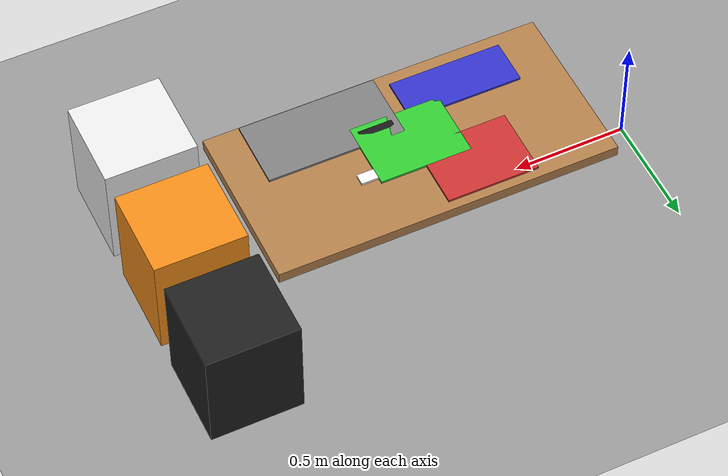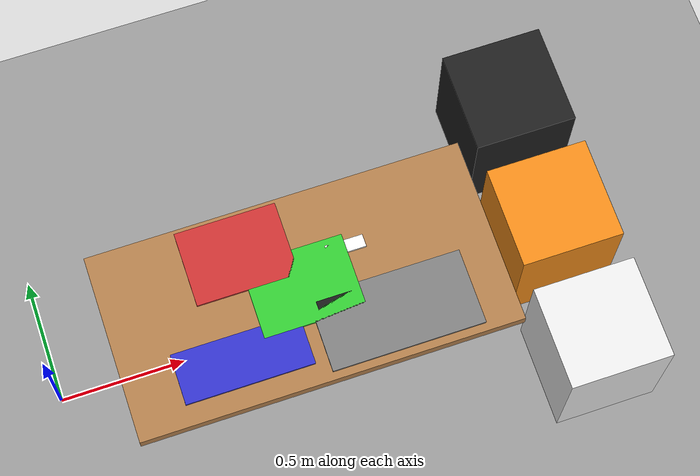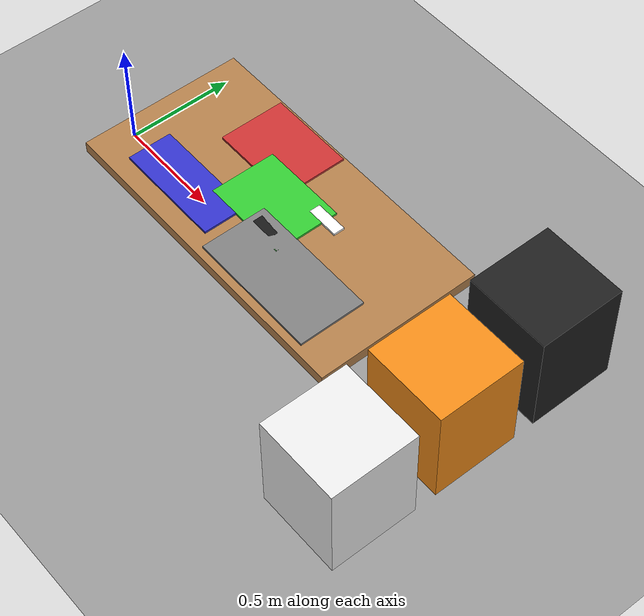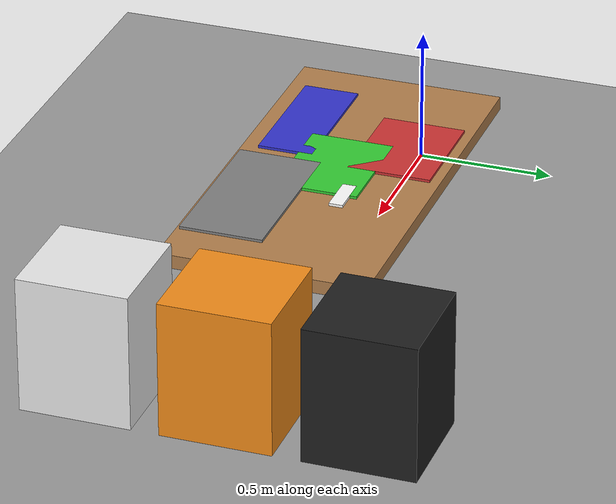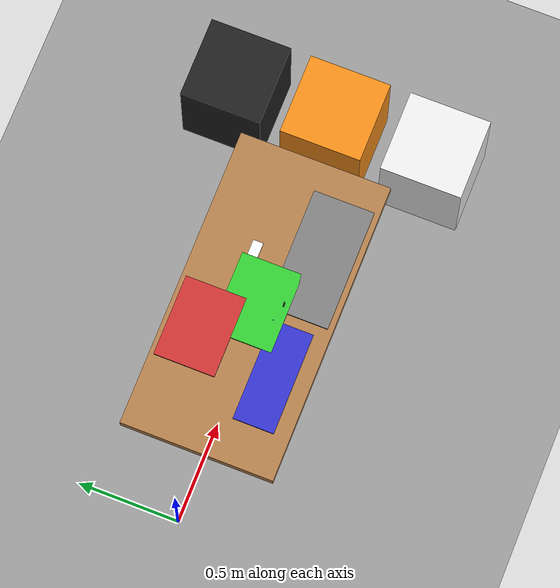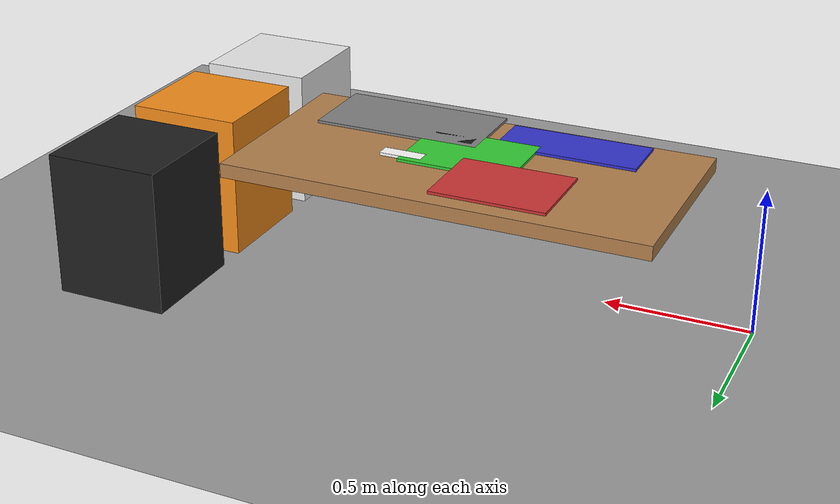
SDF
<?xml version="1.0"?>
<sdf version="1.7">
  <world name="laundry_world">
    <!-- Lighting: Sun -->
    <light type="directional" name="sun">
      <pose>0 0 10 0 0 0</pose>
      <cast_shadows>true</cast_shadows>
      <diffuse>0.9 0.9 0.9 1</diffuse>
      <specular>0.3 0.3 0.3 1</specular>
      <direction>-0.5 0.1 -0.9</direction>
    </light>

    <!-- Grey Carpet Floor -->
    <model name="carpet_floor">
      <static>true</static>
      <pose>0 0 0 0 0 0</pose>
      <link name="link">
        <collision name="collision">
          <geometry>
            <plane>
              <normal>0 0 1</normal>
              <size>100 100</size>
            </plane>
          </geometry>
          <surface>
            <friction>
              <ode>
                <mu>0.8</mu>
                <mu2>0.8</mu2>
              </ode>
            </friction>
          </surface>
        </collision>
        <visual name="visual">
          <geometry>
            <plane>
              <normal>0 0 1</normal>
              <size>100 100</size>
            </plane>
          </geometry>
          <material>
            <script>
              <uri>file://media/materials/textures/carpet_texture.png</uri>
              <name>grey_carpet</name>
            </script>
            <ambient>0.5 0.5 0.5 1</ambient>
            <diffuse>0.6 0.6 0.6 1</diffuse>
            <specular>0.2 0.2 0.2 1</specular>
            <shininess>0.05</shininess>
          </material>
        </visual>
      </link>
    </model>

    <!-- Table -->
    <model name="table">
      <static>true</static>
      <pose>1 0 0.4 0 0 0</pose>
      <link name="link">
        <collision name="collision">
          <geometry>
            <box><size>1.5 0.75 0.05</size></box>
          </geometry>
          <surface>
            <friction>
              <ode>
                <mu>0.6</mu>
                <mu2>0.6</mu2>
              </ode>
            </friction>
          </surface>
        </collision>
        <visual name="visual">
          <geometry>
            <box><size>1.5 0.75 0.05</size></box>
          </geometry>
          <material>
            <script>
              <uri>file://media/materials/textures/wood_table.png</uri>
              <name>wood_table</name>
            </script>
            <ambient>0.5 0.4 0.3 1</ambient>
            <diffuse>0.6 0.4 0.3 1</diffuse>
            <specular>0.2 0.2 0.2 1</specular>
            <shininess>0.2</shininess>
          </material>
        </visual>
      </link>
    </model>

    <!-- Laundry Bin: Darks (Black) -->
    <model name="laundry_bin_darks">
      <static>true</static>
      <pose>2 0.5 0.25 0 0 0</pose>
      <link name="link">
        <collision name="collision">
          <geometry>
            <box><size>0.4 0.4 0.5</size></box>
          </geometry>
        </collision>
        <visual name="visual">
          <geometry>
            <box><size>0.4 0.4 0.5</size></box>
          </geometry>
          <material>
            <script>
              <uri>file://media/materials/textures/perforated_texture.png</uri>
              <name>perforated_black</name>
            </script>
            <ambient>0.1 0.1 0.1 1</ambient>
            <diffuse>0.1 0.1 0.1 1</diffuse>
            <specular>0.2 0.2 0.2 1</specular>
            <shininess>0.3</shininess>
          </material>
        </visual>
      </link>
    </model>

    <!-- Laundry Bin: Colors (Orange) -->
    <model name="laundry_bin_colors">
      <static>true</static>
      <pose>2 0 0.25 0 0 0</pose>
      <link name="link">
        <collision name="collision">
          <geometry>
            <box><size>0.4 0.4 0.5</size></box>
          </geometry>
        </collision>
        <visual name="visual">
          <geometry>
            <box><size>0.4 0.4 0.5</size></box>
          </geometry>
          <material>
            <script>
              <uri>file://media/materials/textures/perforated_texture.png</uri>
              <name>perforated_orange</name>
            </script>
            <ambient>1 0.5 0 1</ambient>
            <diffuse>1 0.5 0 1</diffuse>
            <specular>0.3 0.2 0 1</specular>
            <shininess>0.3</shininess>
          </material>
        </visual>
      </link>
    </model>

    <!-- Laundry Bin: Lights (White) -->
    <model name="laundry_bin_lights">
      <static>true</static>
      <pose>2 -0.5 0.25 0 0 0</pose>
      <link name="link">
        <collision name="collision">
          <geometry>
            <box><size>0.4 0.4 0.5</size></box>
          </geometry>
        </collision>
        <visual name="visual">
          <geometry>
            <box><size>0.4 0.4 0.5</size></box>
          </geometry>
          <material>
            <script>
              <uri>file://media/materials/textures/perforated_texture.png</uri>
              <name>perforated_white</name>
            </script>
            <ambient>1 1 1 1</ambient>
            <diffuse>1 1 1 1</diffuse>
            <specular>0.3 0.3 0.3 1</specular>
            <shininess>0.3</shininess>
          </material>
        </visual>
      </link>
    </model>

    <!-- Laundry Item: Green Shirt -->
    <model name="shirt_green">
      <static>false</static>
      <pose>1 0 0.45 0 0 0</pose>
      <link name="link">
        <inertial>
          <mass>0.1</mass>
        </inertial>
        <collision name="collision">
          <geometry>
            <box><size>0.4 0.3 0.01</size></box>
          </geometry>
        </collision>
        <visual name="visual">
          <geometry>
            <box><size>0.4 0.3 0.01</size></box>
          </geometry>
          <material>
            <ambient>0.2 0.8 0.2 1</ambient>
            <diffuse>0.2 0.8 0.2 1</diffuse>
          </material>
        </visual>
      </link>
    </model>

    <!-- Laundry Item: White Sock -->
    <model name="sock_white">
      <static>false</static>
      <pose>1.2 0.1 0.45 0 0 0</pose>
      <link name="link">
        <inertial>
          <mass>0.05</mass>
        </inertial>
        <collision name="collision">
          <geometry>
            <box><size>0.15 0.05 0.01</size></box>
          </geometry>
        </collision>
        <visual name="visual">
          <geometry>
            <box><size>0.15 0.05 0.01</size></box>
          </geometry>
          <material>
            <ambient>1 1 1 1</ambient>
            <diffuse>1 1 1 1</diffuse>
          </material>
        </visual>
      </link>
    </model>

    <!-- Laundry Item: Dark Sock -->
    <model name="sock_dark">
      <static>false</static>
      <pose>1.1 -0.1 0.45 0 0 0</pose>
      <link name="link">
        <inertial>
          <mass>0.05</mass>
        </inertial>
        <collision name="collision">
          <geometry>
            <box><size>0.15 0.05 0.01</size></box>
          </geometry>
        </collision>
        <visual name="visual">
          <geometry>
            <box><size>0.15 0.05 0.01</size></box>
          </geometry>
          <material>
            <ambient>0.1 0.1 0.1 1</ambient>
            <diffuse>0.1 0.1 0.1 1</diffuse>
          </material>
        </visual>
      </link>
    </model>

    <!-- Laundry Item: Red Shirt -->
    <model name="shirt_red">
      <static>false</static>
      <pose>0.8 0.2 0.45 0 0 0</pose>
      <link name="link">
        <inertial>
          <mass>0.1</mass>
        </inertial>
        <collision name="collision">
          <geometry>
            <box><size>0.4 0.3 0.01</size></box>
          </geometry>
        </collision>
        <visual name="visual">
          <geometry>
            <box><size>0.4 0.3 0.01</size></box>
          </geometry>
          <material>
            <ambient>0.8 0.2 0.2 1</ambient>
            <diffuse>0.8 0.2 0.2 1</diffuse>
          </material>
        </visual>
      </link>
    </model>

    <!-- Laundry Item: Blue Pants -->
    <model name="pants_blue">
      <static>false</static>
      <pose>0.7 -0.2 0.45 0 0 0</pose>
      <link name="link">
        <inertial>
          <mass>0.15</mass>
        </inertial>
        <collision name="collision">
          <geometry>
            <box><size>0.5 0.2 0.01</size></box>
          </geometry>
        </collision>
        <visual name="visual">
          <geometry>
            <box><size>0.5 0.2 0.01</size></box>
          </geometry>
          <material>
            <ambient>0.2 0.2 0.8 1</ambient>
            <diffuse>0.2 0.2 0.8 1</diffuse>
          </material>
        </visual>
      </link>
    </model>

    <!-- Laundry Item: Gray Towel -->
    <model name="towel_gray">
      <static>false</static>
      <pose>1.3 -0.2 0.45 0 0 0</pose>
      <link name="link">
        <inertial>
          <mass>0.2</mass>
        </inertial>
        <collision name="collision">
          <geometry>
            <box><size>0.6 0.3 0.01</size></box>
          </geometry>
        </collision>
        <visual name="visual">
          <geometry>
            <box><size>0.6 0.3 0.01</size></box>
          </geometry>
          <material>
            <ambient>0.5 0.5 0.5 1</ambient>
            <diffuse>0.5 0.5 0.5 1</diffuse>
          </material>
        </visual>
      </link>
    </model>
  </world>
</sdf>
